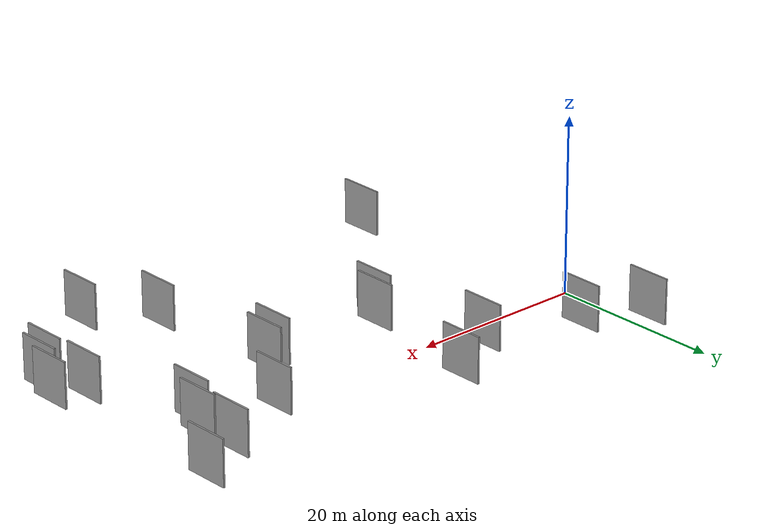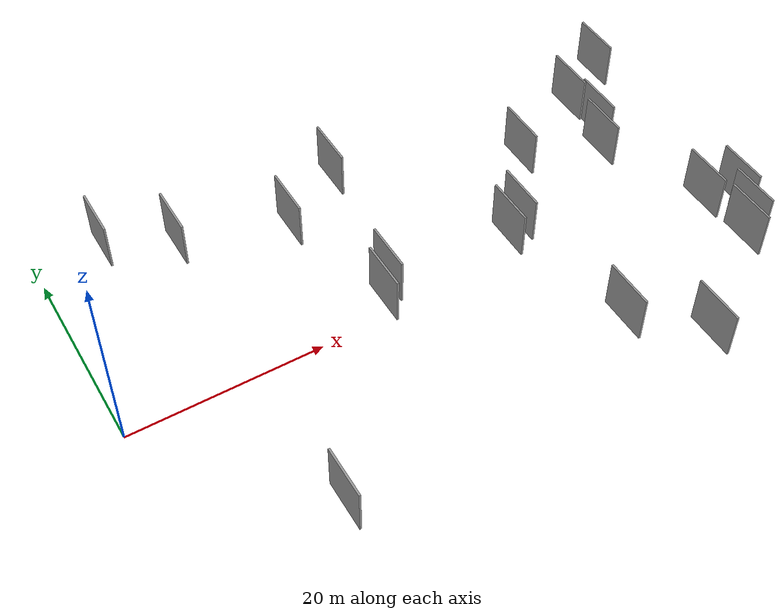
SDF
<sdf version="1.6">
 <world name="default">
  <scene>
   <sky><clouds><speed>12</speed></clouds></sky>
   <ambient>0.4 0.4 0.4 1</ambient>
   <background>0.7 0.7 0.7 1</background>
   <shadows>1</shadows>
  </scene>
  <gravity>0 0 -9.8066</gravity>
  <magnetic_field>6e-06 2.3e-05 -4.2e-05</magnetic_field>
  <physics default="0" name="default_physics" type="ode">
   <ode>
    <solver>
     <type>quick</type>
     <iters>10</iters>
     <sor>1.0</sor>
     <use_dynamic_moi_rescaling>0</use_dynamic_moi_rescaling>
    </solver>
    <constraints>
     <cfm>0</cfm>
     <erp>0.2</erp>
     <contact_max_correcting_vel>100</contact_max_correcting_vel>
     <contact_surface_layer>0.001</contact_surface_layer>
    </constraints>
   </ode>
   <max_step_size>0.004</max_step_size>
   <real_time_factor>1</real_time_factor>
   <real_time_update_rate>250</real_time_update_rate>
  </physics>
  <light name="sun" type="directional">
   <pose>0 0 10 0 0 0</pose>
   <diffuse>0.8 0.8 0.8 1</diffuse>
   <specular>0.2 0.2 0.2 1</specular>
   <attenuation>
    <range>1000</range>
    <constant>0.9</constant>
    <linear>0.01</linear>
    <quadratic>0.001</quadratic>
   </attenuation>
   <direction>-0.5 0.1 -0.9</direction>
  </light>
  <model name="grey_wall_1">
   <static>1</static>
   <pose>61.0505 14.8489 5.0 0.000000 0.000000 1.570796</pose>
   <link name="link">
    <pose>0 0 2.50 0 0 0</pose>
    <collision name="collision"><geometry><box><size>5.00 0.2 5.00</size></box></geometry></collision>
    <visual name="visual">
     <cast_shadows>0</cast_shadows>
     <geometry><box><size>5.00 0.2 5.00</size></box></geometry>
     <material>
      <script>
       <uri>model://grey_wall/materials/scripts</uri>
       <uri>model://grey_wall/materials/textures</uri>
       <name>vrc/grey_wall</name>
      </script>
     </material>
    </visual>
   </link>
  </model>
  <model name="grey_wall_2">
   <static>1</static>
   <pose>60.7656 -10.6044 5.0 0.000000 0.000000 1.570796</pose>
   <link name="link">
    <pose>0 0 2.50 0 0 0</pose>
    <collision name="collision"><geometry><box><size>5.00 0.2 5.00</size></box></geometry></collision>
    <visual name="visual">
     <cast_shadows>0</cast_shadows>
     <geometry><box><size>5.00 0.2 5.00</size></box></geometry>
     <material>
      <script>
       <uri>model://grey_wall/materials/scripts</uri>
       <uri>model://grey_wall/materials/textures</uri>
       <name>vrc/grey_wall</name>
      </script>
     </material>
    </visual>
   </link>
  </model>
  <model name="grey_wall_3">
   <static>1</static>
   <pose>27.0581 0.0580 5.0 0.000000 0.000000 1.570796</pose>
   <link name="link">
    <pose>0 0 2.50 0 0 0</pose>
    <collision name="collision"><geometry><box><size>5.00 0.2 5.00</size></box></geometry></collision>
    <visual name="visual">
     <cast_shadows>0</cast_shadows>
     <geometry><box><size>5.00 0.2 5.00</size></box></geometry>
     <material>
      <script>
       <uri>model://grey_wall/materials/scripts</uri>
       <uri>model://grey_wall/materials/textures</uri>
       <name>vrc/grey_wall</name>
      </script>
     </material>
    </visual>
   </link>
  </model>
  <model name="grey_wall_4">
   <static>1</static>
   <pose>39.7021 -0.7969 5.0 0.000000 0.000000 1.570796</pose>
   <link name="link">
    <pose>0 0 2.50 0 0 0</pose>
    <collision name="collision"><geometry><box><size>5.00 0.2 5.00</size></box></geometry></collision>
    <visual name="visual">
     <cast_shadows>0</cast_shadows>
     <geometry><box><size>5.00 0.2 5.00</size></box></geometry>
     <material>
      <script>
       <uri>model://grey_wall/materials/scripts</uri>
       <uri>model://grey_wall/materials/textures</uri>
       <name>vrc/grey_wall</name>
      </script>
     </material>
    </visual>
   </link>
  </model>
  <model name="grey_wall_5">
   <static>1</static>
   <pose>59.0199 -12.0743 5.0 0.000000 0.000000 1.570796</pose>
   <link name="link">
    <pose>0 0 2.50 0 0 0</pose>
    <collision name="collision"><geometry><box><size>5.00 0.2 5.00</size></box></geometry></collision>
    <visual name="visual">
     <cast_shadows>0</cast_shadows>
     <geometry><box><size>5.00 0.2 5.00</size></box></geometry>
     <material>
      <script>
       <uri>model://grey_wall/materials/scripts</uri>
       <uri>model://grey_wall/materials/textures</uri>
       <name>vrc/grey_wall</name>
      </script>
     </material>
    </visual>
   </link>
  </model>
  <model name="grey_wall_6">
   <static>1</static>
   <pose>12.1341 -18.6609 5.0 0.000000 0.000000 1.570796</pose>
   <link name="link">
    <pose>0 0 2.50 0 0 0</pose>
    <collision name="collision"><geometry><box><size>5.00 0.2 5.00</size></box></geometry></collision>
    <visual name="visual">
     <cast_shadows>0</cast_shadows>
     <geometry><box><size>5.00 0.2 5.00</size></box></geometry>
     <material>
      <script>
       <uri>model://grey_wall/materials/scripts</uri>
       <uri>model://grey_wall/materials/textures</uri>
       <name>vrc/grey_wall</name>
      </script>
     </material>
    </visual>
   </link>
  </model>
  <model name="grey_wall_7">
   <static>1</static>
   <pose>55.5164 11.7551 5.0 0.000000 0.000000 1.570796</pose>
   <link name="link">
    <pose>0 0 2.50 0 0 0</pose>
    <collision name="collision"><geometry><box><size>5.00 0.2 5.00</size></box></geometry></collision>
    <visual name="visual">
     <cast_shadows>0</cast_shadows>
     <geometry><box><size>5.00 0.2 5.00</size></box></geometry>
     <material>
      <script>
       <uri>model://grey_wall/materials/scripts</uri>
       <uri>model://grey_wall/materials/textures</uri>
       <name>vrc/grey_wall</name>
      </script>
     </material>
    </visual>
   </link>
  </model>
  <model name="grey_wall_8">
   <static>1</static>
   <pose>46.7715 7.6808 5.0 0.000000 0.000000 1.570796</pose>
   <link name="link">
    <pose>0 0 2.50 0 0 0</pose>
    <collision name="collision"><geometry><box><size>5.00 0.2 5.00</size></box></geometry></collision>
    <visual name="visual">
     <cast_shadows>0</cast_shadows>
     <geometry><box><size>5.00 0.2 5.00</size></box></geometry>
     <material>
      <script>
       <uri>model://grey_wall/materials/scripts</uri>
       <uri>model://grey_wall/materials/textures</uri>
       <name>vrc/grey_wall</name>
      </script>
     </material>
    </visual>
   </link>
  </model>
  <model name="grey_wall_9">
   <static>1</static>
   <pose>5.8239 17.3853 5.0 0.000000 0.000000 1.570796</pose>
   <link name="link">
    <pose>0 0 2.50 0 0 0</pose>
    <collision name="collision"><geometry><box><size>5.00 0.2 5.00</size></box></geometry></collision>
    <visual name="visual">
     <cast_shadows>0</cast_shadows>
     <geometry><box><size>5.00 0.2 5.00</size></box></geometry>
     <material>
      <script>
       <uri>model://grey_wall/materials/scripts</uri>
       <uri>model://grey_wall/materials/textures</uri>
       <name>vrc/grey_wall</name>
      </script>
     </material>
    </visual>
   </link>
  </model>
  <model name="grey_wall_10">
   <static>1</static>
   <pose>43.1166 -14.4233 5.0 0.000000 0.000000 1.570796</pose>
   <link name="link">
    <pose>0 0 2.50 0 0 0</pose>
    <collision name="collision"><geometry><box><size>5.00 0.2 5.00</size></box></geometry></collision>
    <visual name="visual">
     <cast_shadows>0</cast_shadows>
     <geometry><box><size>5.00 0.2 5.00</size></box></geometry>
     <material>
      <script>
       <uri>model://grey_wall/materials/scripts</uri>
       <uri>model://grey_wall/materials/textures</uri>
       <name>vrc/grey_wall</name>
      </script>
     </material>
    </visual>
   </link>
  </model>
  <model name="grey_wall_11">
   <static>1</static>
   <pose>54.3949 4.6365 5.0 0.000000 0.000000 1.570796</pose>
   <link name="link">
    <pose>0 0 2.50 0 0 0</pose>
    <collision name="collision"><geometry><box><size>5.00 0.2 5.00</size></box></geometry></collision>
    <visual name="visual">
     <cast_shadows>0</cast_shadows>
     <geometry><box><size>5.00 0.2 5.00</size></box></geometry>
     <material>
      <script>
       <uri>model://grey_wall/materials/scripts</uri>
       <uri>model://grey_wall/materials/textures</uri>
       <name>vrc/grey_wall</name>
      </script>
     </material>
    </visual>
   </link>
  </model>
  <model name="grey_wall_12">
   <static>1</static>
   <pose>41.6851 0.2794 5.0 0.000000 0.000000 1.570796</pose>
   <link name="link">
    <pose>0 0 2.50 0 0 0</pose>
    <collision name="collision"><geometry><box><size>5.00 0.2 5.00</size></box></geometry></collision>
    <visual name="visual">
     <cast_shadows>0</cast_shadows>
     <geometry><box><size>5.00 0.2 5.00</size></box></geometry>
     <material>
      <script>
       <uri>model://grey_wall/materials/scripts</uri>
       <uri>model://grey_wall/materials/textures</uri>
       <name>vrc/grey_wall</name>
      </script>
     </material>
    </visual>
   </link>
  </model>
  <model name="grey_wall_13">
   <static>1</static>
   <pose>58.7014 -6.3107 5.0 0.000000 0.000000 1.570796</pose>
   <link name="link">
    <pose>0 0 2.50 0 0 0</pose>
    <collision name="collision"><geometry><box><size>5.00 0.2 5.00</size></box></geometry></collision>
    <visual name="visual">
     <cast_shadows>0</cast_shadows>
     <geometry><box><size>5.00 0.2 5.00</size></box></geometry>
     <material>
      <script>
       <uri>model://grey_wall/materials/scripts</uri>
       <uri>model://grey_wall/materials/textures</uri>
       <name>vrc/grey_wall</name>
      </script>
     </material>
    </visual>
   </link>
  </model>
  <model name="grey_wall_14">
   <static>1</static>
   <pose>61.8599 -7.5958 5.0 0.000000 0.000000 1.570796</pose>
   <link name="link">
    <pose>0 0 2.50 0 0 0</pose>
    <collision name="collision"><geometry><box><size>5.00 0.2 5.00</size></box></geometry></collision>
    <visual name="visual">
     <cast_shadows>0</cast_shadows>
     <geometry><box><size>5.00 0.2 5.00</size></box></geometry>
     <material>
      <script>
       <uri>model://grey_wall/materials/scripts</uri>
       <uri>model://grey_wall/materials/textures</uri>
       <name>vrc/grey_wall</name>
      </script>
     </material>
    </visual>
   </link>
  </model>
  <model name="grey_wall_15">
   <static>1</static>
   <pose>48.7488 -19.8014 5.0 0.000000 0.000000 1.570796</pose>
   <link name="link">
    <pose>0 0 2.50 0 0 0</pose>
    <collision name="collision"><geometry><box><size>5.00 0.2 5.00</size></box></geometry></collision>
    <visual name="visual">
     <cast_shadows>0</cast_shadows>
     <geometry><box><size>5.00 0.2 5.00</size></box></geometry>
     <material>
      <script>
       <uri>model://grey_wall/materials/scripts</uri>
       <uri>model://grey_wall/materials/textures</uri>
       <name>vrc/grey_wall</name>
      </script>
     </material>
    </visual>
   </link>
  </model>
  <model name="grey_wall_16">
   <static>1</static>
   <pose>25.5815 -1.7045 5.0 0.000000 0.000000 1.570796</pose>
   <link name="link">
    <pose>0 0 2.50 0 0 0</pose>
    <collision name="collision"><geometry><box><size>5.00 0.2 5.00</size></box></geometry></collision>
    <visual name="visual">
     <cast_shadows>0</cast_shadows>
     <geometry><box><size>5.00 0.2 5.00</size></box></geometry>
     <material>
      <script>
       <uri>model://grey_wall/materials/scripts</uri>
       <uri>model://grey_wall/materials/textures</uri>
       <name>vrc/grey_wall</name>
      </script>
     </material>
    </visual>
   </link>
  </model>
  <model name="grey_wall_17">
   <static>1</static>
   <pose>22.3958 10.7607 5.0 0.000000 0.000000 1.570796</pose>
   <link name="link">
    <pose>0 0 2.50 0 0 0</pose>
    <collision name="collision"><geometry><box><size>5.00 0.2 5.00</size></box></geometry></collision>
    <visual name="visual">
     <cast_shadows>0</cast_shadows>
     <geometry><box><size>5.00 0.2 5.00</size></box></geometry>
     <material>
      <script>
       <uri>model://grey_wall/materials/scripts</uri>
       <uri>model://grey_wall/materials/textures</uri>
       <name>vrc/grey_wall</name>
      </script>
     </material>
    </visual>
   </link>
  </model>
  <model name="grey_wall_18">
   <static>1</static>
   <pose>12.0474 14.0816 5.0 0.000000 0.000000 1.570796</pose>
   <link name="link">
    <pose>0 0 2.50 0 0 0</pose>
    <collision name="collision"><geometry><box><size>5.00 0.2 5.00</size></box></geometry></collision>
    <visual name="visual">
     <cast_shadows>0</cast_shadows>
     <geometry><box><size>5.00 0.2 5.00</size></box></geometry>
     <material>
      <script>
       <uri>model://grey_wall/materials/scripts</uri>
       <uri>model://grey_wall/materials/textures</uri>
       <name>vrc/grey_wall</name>
      </script>
     </material>
    </visual>
   </link>
  </model>
  <model name="grey_wall_19">
   <static>1</static>
   <pose>55.8211 7.2787 5.0 0.000000 0.000000 1.570796</pose>
   <link name="link">
    <pose>0 0 2.50 0 0 0</pose>
    <collision name="collision"><geometry><box><size>5.00 0.2 5.00</size></box></geometry></collision>
    <visual name="visual">
     <cast_shadows>0</cast_shadows>
     <geometry><box><size>5.00 0.2 5.00</size></box></geometry>
     <material>
      <script>
       <uri>model://grey_wall/materials/scripts</uri>
       <uri>model://grey_wall/materials/textures</uri>
       <name>vrc/grey_wall</name>
      </script>
     </material>
    </visual>
   </link>
  </model>
  <model name="grey_wall_20">
   <static>1</static>
   <pose>29.0383 14.6882 5.0 0.000000 0.000000 1.570796</pose>
   <link name="link">
    <pose>0 0 2.50 0 0 0</pose>
    <collision name="collision"><geometry><box><size>5.00 0.2 5.00</size></box></geometry></collision>
    <visual name="visual">
     <cast_shadows>0</cast_shadows>
     <geometry><box><size>5.00 0.2 5.00</size></box></geometry>
     <material>
      <script>
       <uri>model://grey_wall/materials/scripts</uri>
       <uri>model://grey_wall/materials/textures</uri>
       <name>vrc/grey_wall</name>
      </script>
     </material>
    </visual>
   </link>
  </model>
 </world>
</sdf>
